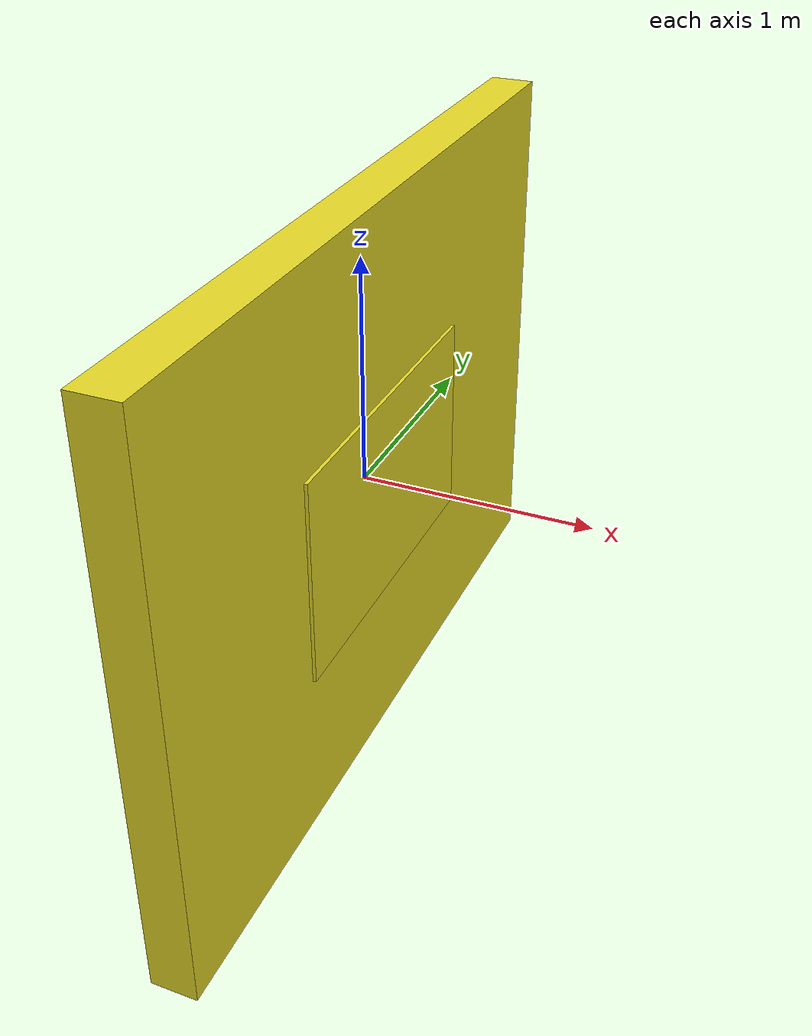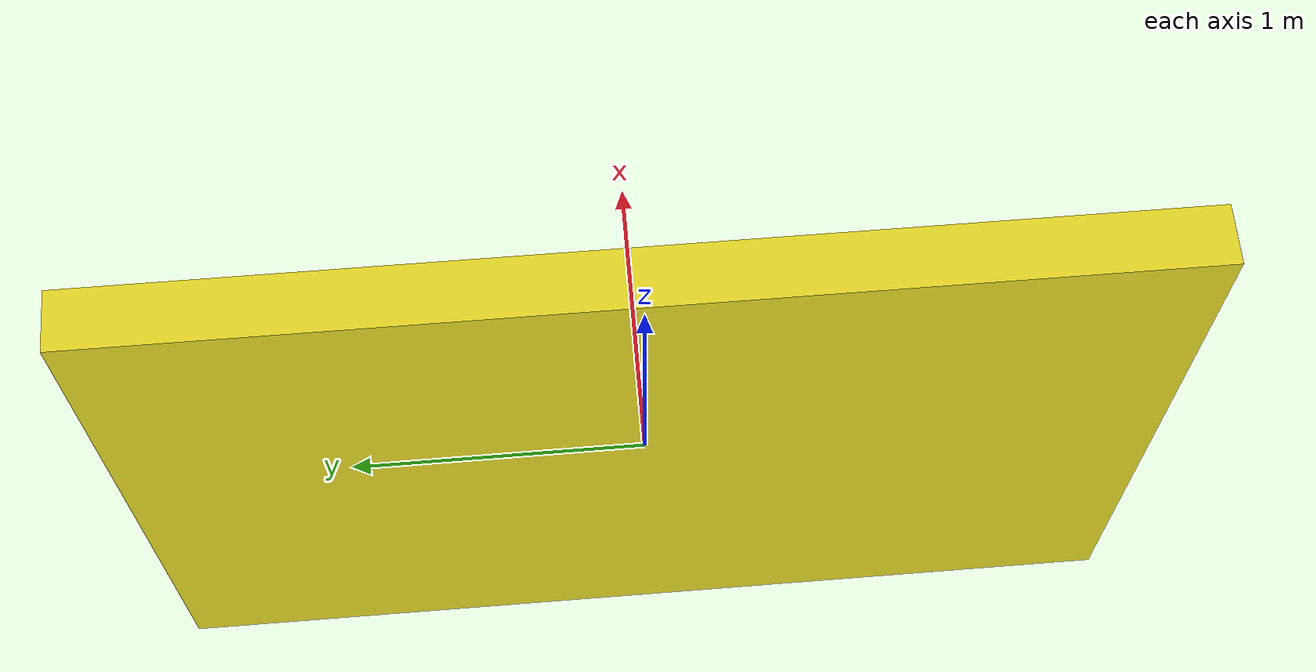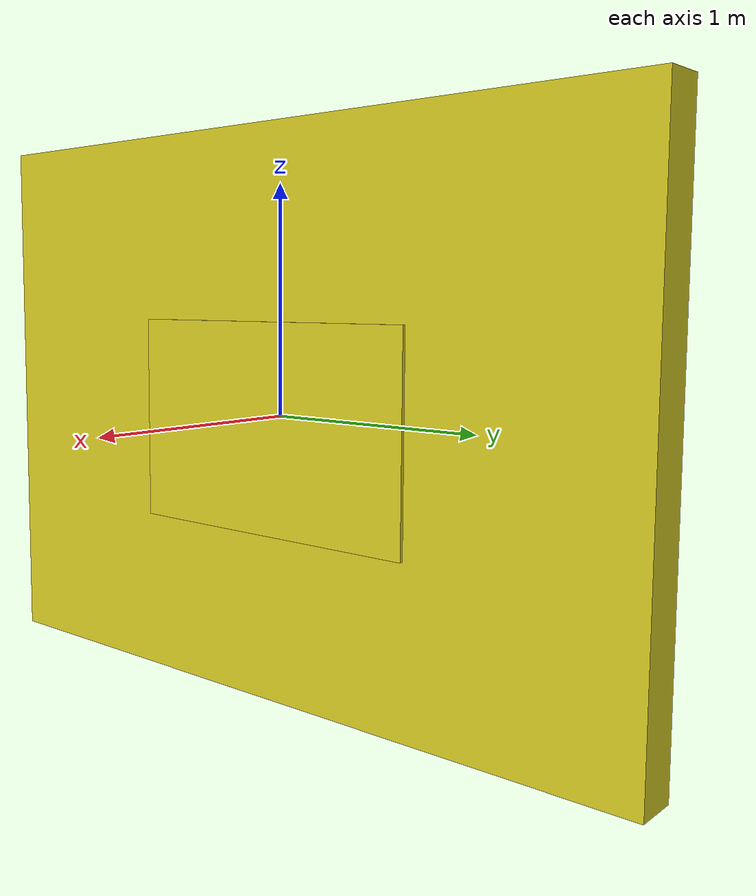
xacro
<?xml version="1.0" ?>
<robot name="lab_side_whiteboard" xmlns:xacro="http://ros.org/wiki/xacro">

<!-- Property List -->
<xacro:property name="pi" value="3.1415926535897931" />
<xacro:property name="wall_length" value="3.5" />
<xacro:property name="wall_height" value="2.5" />
<xacro:property name="wall_width" value="0.2" />

<xacro:property name="board_length" value="1.4732" />
<xacro:property name="board_height" value="0.9271" />
<xacro:property name="board_width" value="0.03" />

<xacro:property name="board_height_z" value="1.20015" />

<!-- Color macros -->
<xacro:macro name="material_yellow_wall">
        <material name="yellow_transparent">
                <color rgba="${169/255} ${145/255} ${14/255} 0.4" />
        </material>
</xacro:macro>

<!-- Base Link -->
<link name = "wall">
<inertial>
 <origin xyz = "0 0 0" />
 <mass value = "1.0" />
 <inertia ixx="1" ixy="0"  ixz="0"
               iyy="1" iyz="0"
               izz="1" />
 </inertial>
<visual>
  <origin xyz = "0 0 0" />
  <geometry>
     <box size="${wall_width} ${wall_length}  ${wall_height}"/>
  </geometry>
  <material name="yellow_transparent"/>
</visual>
<collision>
  <origin xyz = "0 0 0" />
  <geometry>
     <box size="${wall_width} ${wall_length}  ${wall_height}"/>
  </geometry>
  <material name="yellow_transparent"/>
</collision>
</link>

<!-- Board Link-->
<link name = "board">
<inertial>
 <origin xyz = "0 0 ${-wall_height/2 + board_height_z}" />
 <mass value = "1.0" />
 <inertia ixx="1" ixy="0"  ixz="0"
               iyy="1" iyz="0"
               izz="1" />
 </inertial>
<visual>
  <origin xyz = "0 0 0" />
  <geometry>
     <box size="${board_width} ${board_length} ${board_height}"/>
  </geometry>
  <material name="yellow_transparent"/>
</visual>
<collision>
  <origin xyz = "0 0 0" />
  <geometry>
     <box size="${board_width} ${board_length} ${board_height}"/>
  </geometry>
  <material name="yellow_transparent"/>
</collision>
</link>

<!-- wall to board-->
<joint name="wall_to_board" type="fixed">
  <parent link="wall"/>
  <child link="board"/>
  <axis xyz="0 0 0"/>
  <origin rpy="0.0 0.0 0.0" xyz="${wall_width/2} 0.0 ${-wall_height/2 + board_height_z}"/>
</joint>

<gazebo reference="wall">
   <material>Gazebo/CeilingTiled   </material>
   <mu1>50.0</mu1>
   <mu2>50.0</mu2>
   <kp>1000000.0</kp>
   <kd>1.0</kd>
</gazebo>

<gazebo reference="board">
   <material>Gazebo/White </material>
</gazebo>

</robot>
